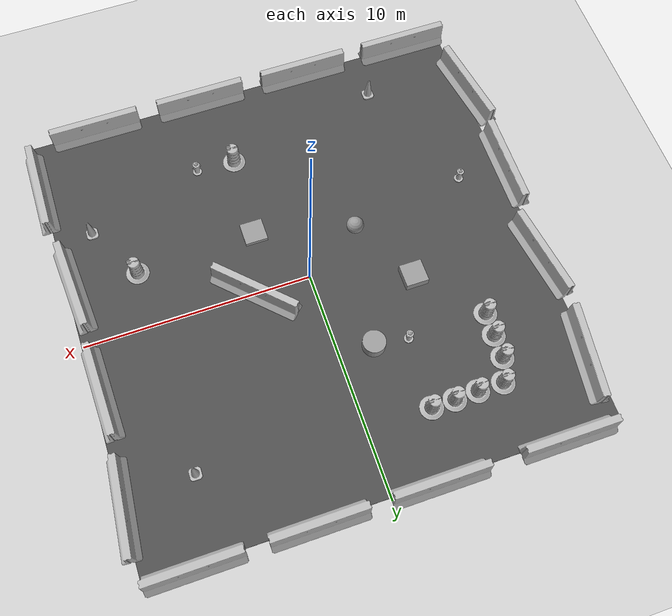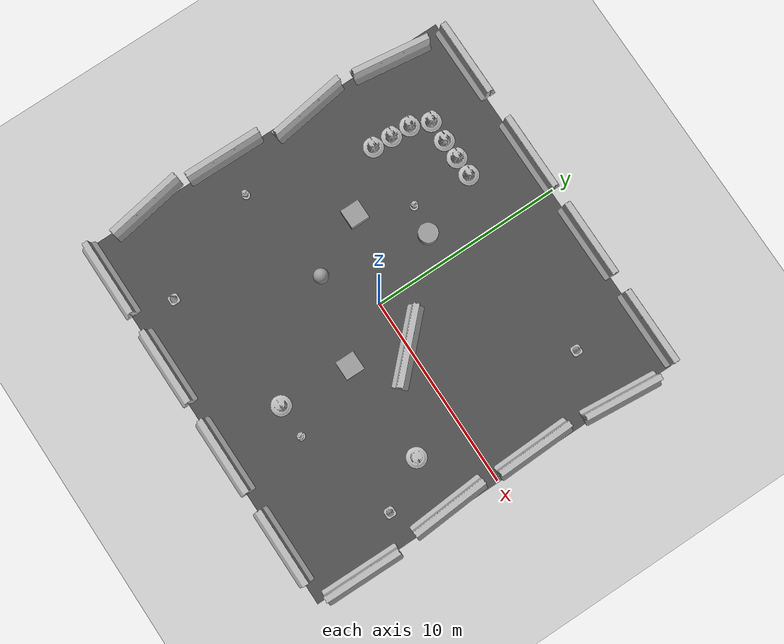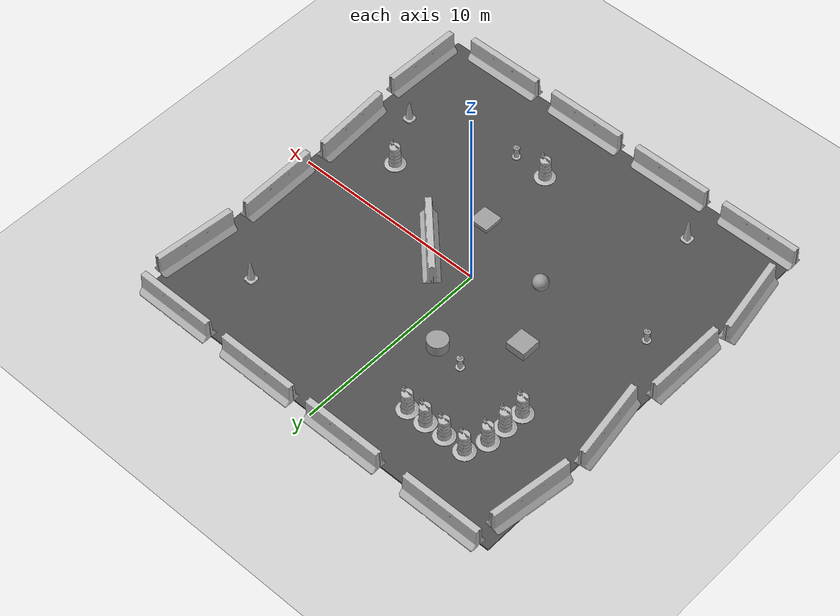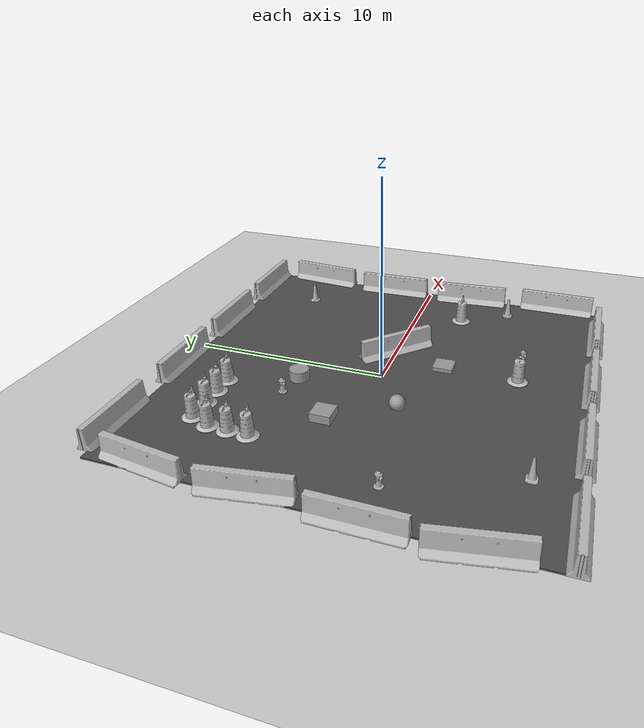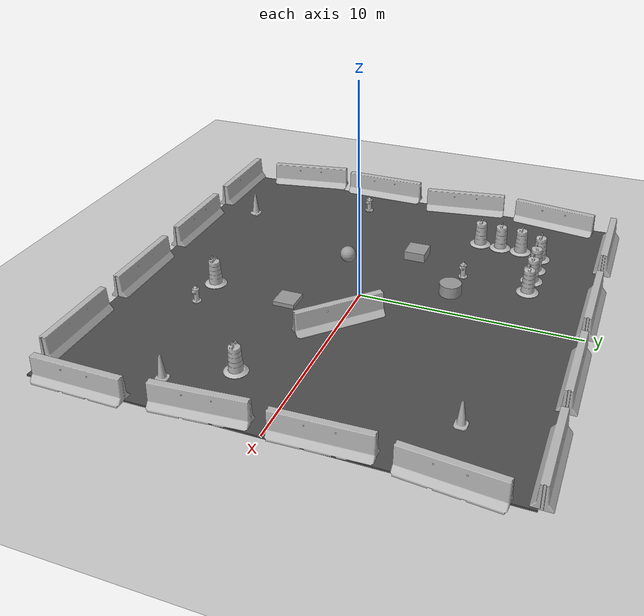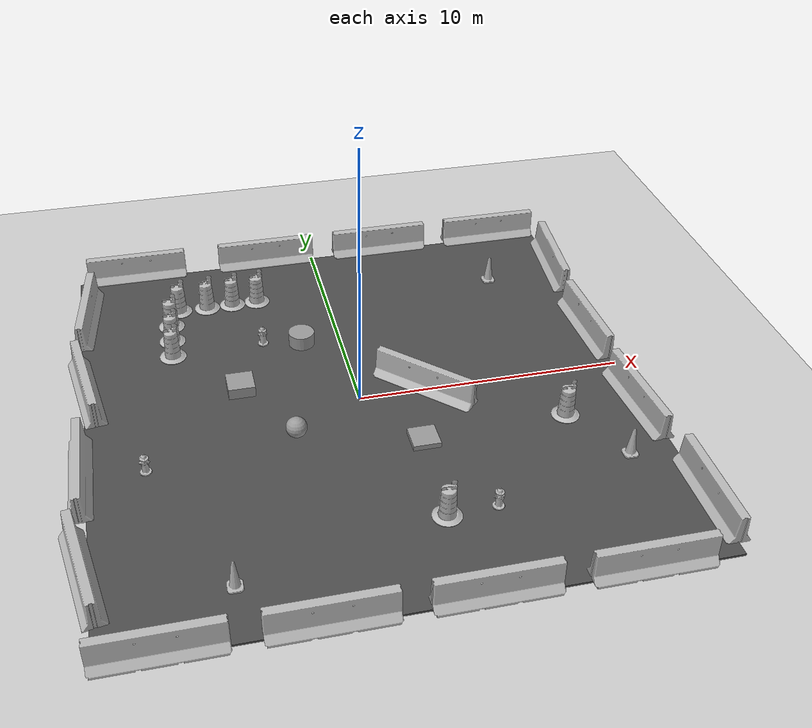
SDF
<sdf version="1.6">
 <world name="default">
  <light name="sun" type="directional">
   <pose>0 0 10 0 -0 0</pose>
   <diffuse>0.8 0.8 0.8 1</diffuse>
   <specular>0.2 0.2 0.2 1</specular>
   <attenuation>
    <range>1000</range>
    <constant>0.9</constant>
    <linear>0.01</linear>
    <quadratic>0.001</quadratic>
   </attenuation>
   <direction>-0.5 0.1 -0.9</direction>
  </light>
  <model name="ground_plane">
   <static>1</static>
   <link name="link">
    <collision name="collision">
     <geometry><plane><normal>0 0 1</normal><size>100 100</size></plane></geometry>
     <surface><friction><ode><mu>100</mu><mu2>50</mu2></ode></friction></surface>
    </collision>
    <visual name="visual">
     <cast_shadows>0</cast_shadows>
     <geometry><plane><normal>0 0 1</normal><size>100 100</size></plane></geometry>
     <material>
      <script><uri>file://media/materials/scripts/gazebo.material</uri><name>Gazebo/Grey</name></script>
     </material>
    </visual>
    <velocity_decay><linear>0</linear><angular>0</angular></velocity_decay>
   </link>
  </model>
  <physics name="default_physics" default="0" type="ode">
   <max_step_size>0.01</max_step_size>
   <real_time_factor>1</real_time_factor>
   <real_time_update_rate>100</real_time_update_rate>
  </physics>
  <scene><ambient>0.4 0.4 0.4 1</ambient><background>0.7 0.7 0.7 1</background><shadows>1</shadows></scene>
  <model name="jersey_barrier">
   <static>1</static>
   <link name="link">
    <visual name="visual">
     <geometry><mesh><uri>model://jersey_barrier/meshes/jersey_barrier.dae</uri></mesh></geometry>
    </visual>
    <collision name="upright">
     <pose>0 0 0.5715 0 -0 0</pose>
     <geometry><box><size>4.06542 0.3063 1.143</size></box></geometry>
    </collision>
    <collision name="base">
     <pose>0 0 0.032258 0 -0 0</pose>
     <geometry><box><size>4.06542 0.8107 0.064516</size></box></geometry>
    </collision>
    <collision name="base2">
     <pose>0 0 0.1 0 -0 0</pose>
     <geometry><box><size>4.06542 0.65 0.1</size></box></geometry>
    </collision>
    <collision name="base3">
     <pose>0 0 0.2 0 -0 0</pose>
     <geometry><box><size>4.06542 0.5 0.1</size></box></geometry>
    </collision>
    <collision name="left-angle">
     <pose>0 -0.224 0.2401 0.9 -0 0</pose>
     <geometry><box><size>4.06542 0.5 0.064516</size></box></geometry>
    </collision>
    <collision name="right-angle">
     <pose>0 0.224 0.2401 -0.9 0 0</pose>
     <geometry><box><size>4.06542 0.5 0.064516</size></box></geometry>
    </collision>
    <velocity_decay><linear>0</linear><angular>0</angular></velocity_decay>
   </link>
   <pose>-8 -10 0 0 -0 0</pose>
  </model>
  <model name="jersey_barrier_0">
   <static>1</static>
   <link name="link">
    <visual name="visual">
     <geometry><mesh><uri>model://jersey_barrier/meshes/jersey_barrier.dae</uri></mesh></geometry>
    </visual>
    <collision name="upright">
     <pose>0 0 0.5715 0 -0 0</pose>
     <geometry><box><size>4.06542 0.3063 1.143</size></box></geometry>
    </collision>
    <collision name="base">
     <pose>0 0 0.032258 0 -0 0</pose>
     <geometry><box><size>4.06542 0.8107 0.064516</size></box></geometry>
    </collision>
    <collision name="base2">
     <pose>0 0 0.1 0 -0 0</pose>
     <geometry><box><size>4.06542 0.65 0.1</size></box></geometry>
    </collision>
    <collision name="base3">
     <pose>0 0 0.2 0 -0 0</pose>
     <geometry><box><size>4.06542 0.5 0.1</size></box></geometry>
    </collision>
    <collision name="left-angle">
     <pose>0 -0.224 0.2401 0.9 -0 0</pose>
     <geometry><box><size>4.06542 0.5 0.064516</size></box></geometry>
    </collision>
    <collision name="right-angle">
     <pose>0 0.224 0.2401 -0.9 0 0</pose>
     <geometry><box><size>4.06542 0.5 0.064516</size></box></geometry>
    </collision>
    <velocity_decay><linear>0</linear><angular>0</angular></velocity_decay>
   </link>
   <pose>-3 -10 0 0 -0 0</pose>
  </model>
  <model name="jersey_barrier_1">
   <static>1</static>
   <link name="link">
    <visual name="visual">
     <geometry><mesh><uri>model://jersey_barrier/meshes/jersey_barrier.dae</uri></mesh></geometry>
    </visual>
    <collision name="upright">
     <pose>0 0 0.5715 0 -0 0</pose>
     <geometry><box><size>4.06542 0.3063 1.143</size></box></geometry>
    </collision>
    <collision name="base">
     <pose>0 0 0.032258 0 -0 0</pose>
     <geometry><box><size>4.06542 0.8107 0.064516</size></box></geometry>
    </collision>
    <collision name="base2">
     <pose>0 0 0.1 0 -0 0</pose>
     <geometry><box><size>4.06542 0.65 0.1</size></box></geometry>
    </collision>
    <collision name="base3">
     <pose>0 0 0.2 0 -0 0</pose>
     <geometry><box><size>4.06542 0.5 0.1</size></box></geometry>
    </collision>
    <collision name="left-angle">
     <pose>0 -0.224 0.2401 0.9 -0 0</pose>
     <geometry><box><size>4.06542 0.5 0.064516</size></box></geometry>
    </collision>
    <collision name="right-angle">
     <pose>0 0.224 0.2401 -0.9 0 0</pose>
     <geometry><box><size>4.06542 0.5 0.064516</size></box></geometry>
    </collision>
    <velocity_decay><linear>0</linear><angular>0</angular></velocity_decay>
   </link>
   <pose>2 -10 0 0 -0 0</pose>
  </model>
  <model name="jersey_barrier_2">
   <static>1</static>
   <link name="link">
    <visual name="visual">
     <geometry><mesh><uri>model://jersey_barrier/meshes/jersey_barrier.dae</uri></mesh></geometry>
    </visual>
    <collision name="upright">
     <pose>0 0 0.5715 0 -0 0</pose>
     <geometry><box><size>4.06542 0.3063 1.143</size></box></geometry>
    </collision>
    <collision name="base">
     <pose>0 0 0.032258 0 -0 0</pose>
     <geometry><box><size>4.06542 0.8107 0.064516</size></box></geometry>
    </collision>
    <collision name="base2">
     <pose>0 0 0.1 0 -0 0</pose>
     <geometry><box><size>4.06542 0.65 0.1</size></box></geometry>
    </collision>
    <collision name="base3">
     <pose>0 0 0.2 0 -0 0</pose>
     <geometry><box><size>4.06542 0.5 0.1</size></box></geometry>
    </collision>
    <collision name="left-angle">
     <pose>0 -0.224 0.2401 0.9 -0 0</pose>
     <geometry><box><size>4.06542 0.5 0.064516</size></box></geometry>
    </collision>
    <collision name="right-angle">
     <pose>0 0.224 0.2401 -0.9 0 0</pose>
     <geometry><box><size>4.06542 0.5 0.064516</size></box></geometry>
    </collision>
    <velocity_decay><linear>0</linear><angular>0</angular></velocity_decay>
   </link>
   <pose>7 -10 0 0 -0 0</pose>
  </model>
  <model name="jersey_barrier_3">
   <static>1</static>
   <link name="link">
    <visual name="visual">
     <geometry><mesh><uri>model://jersey_barrier/meshes/jersey_barrier.dae</uri></mesh></geometry>
    </visual>
    <collision name="upright">
     <pose>0 0 0.5715 0 -0 0</pose>
     <geometry><box><size>4.06542 0.3063 1.143</size></box></geometry>
    </collision>
    <collision name="base">
     <pose>0 0 0.032258 0 -0 0</pose>
     <geometry><box><size>4.06542 0.8107 0.064516</size></box></geometry>
    </collision>
    <collision name="base2">
     <pose>0 0 0.1 0 -0 0</pose>
     <geometry><box><size>4.06542 0.65 0.1</size></box></geometry>
    </collision>
    <collision name="base3">
     <pose>0 0 0.2 0 -0 0</pose>
     <geometry><box><size>4.06542 0.5 0.1</size></box></geometry>
    </collision>
    <collision name="left-angle">
     <pose>0 -0.224 0.2401 0.9 -0 0</pose>
     <geometry><box><size>4.06542 0.5 0.064516</size></box></geometry>
    </collision>
    <collision name="right-angle">
     <pose>0 0.224 0.2401 -0.9 0 0</pose>
     <geometry><box><size>4.06542 0.5 0.064516</size></box></geometry>
    </collision>
    <velocity_decay><linear>0</linear><angular>0</angular></velocity_decay>
   </link>
   <pose>-7.50675 10 0 0 -0 0</pose>
  </model>
  <model name="jersey_barrier_4">
   <static>1</static>
   <link name="link">
    <visual name="visual">
     <geometry><mesh><uri>model://jersey_barrier/meshes/jersey_barrier.dae</uri></mesh></geometry>
    </visual>
    <collision name="upright">
     <pose>0 0 0.5715 0 -0 0</pose>
     <geometry><box><size>4.06542 0.3063 1.143</size></box></geometry>
    </collision>
    <collision name="base">
     <pose>0 0 0.032258 0 -0 0</pose>
     <geometry><box><size>4.06542 0.8107 0.064516</size></box></geometry>
    </collision>
    <collision name="base2">
     <pose>0 0 0.1 0 -0 0</pose>
     <geometry><box><size>4.06542 0.65 0.1</size></box></geometry>
    </collision>
    <collision name="base3">
     <pose>0 0 0.2 0 -0 0</pose>
     <geometry><box><size>4.06542 0.5 0.1</size></box></geometry>
    </collision>
    <collision name="left-angle">
     <pose>0 -0.224 0.2401 0.9 -0 0</pose>
     <geometry><box><size>4.06542 0.5 0.064516</size></box></geometry>
    </collision>
    <collision name="right-angle">
     <pose>0 0.224 0.2401 -0.9 0 0</pose>
     <geometry><box><size>4.06542 0.5 0.064516</size></box></geometry>
    </collision>
    <velocity_decay><linear>0</linear><angular>0</angular></velocity_decay>
   </link>
   <pose>-2 10 0 0 -0 0</pose>
  </model>
  <model name="jersey_barrier_5">
   <static>1</static>
   <link name="link">
    <visual name="visual">
     <geometry><mesh><uri>model://jersey_barrier/meshes/jersey_barrier.dae</uri></mesh></geometry>
    </visual>
    <collision name="upright">
     <pose>0 0 0.5715 0 -0 0</pose>
     <geometry><box><size>4.06542 0.3063 1.143</size></box></geometry>
    </collision>
    <collision name="base">
     <pose>0 0 0.032258 0 -0 0</pose>
     <geometry><box><size>4.06542 0.8107 0.064516</size></box></geometry>
    </collision>
    <collision name="base2">
     <pose>0 0 0.1 0 -0 0</pose>
     <geometry><box><size>4.06542 0.65 0.1</size></box></geometry>
    </collision>
    <collision name="base3">
     <pose>0 0 0.2 0 -0 0</pose>
     <geometry><box><size>4.06542 0.5 0.1</size></box></geometry>
    </collision>
    <collision name="left-angle">
     <pose>0 -0.224 0.2401 0.9 -0 0</pose>
     <geometry><box><size>4.06542 0.5 0.064516</size></box></geometry>
    </collision>
    <collision name="right-angle">
     <pose>0 0.224 0.2401 -0.9 0 0</pose>
     <geometry><box><size>4.06542 0.5 0.064516</size></box></geometry>
    </collision>
    <velocity_decay><linear>0</linear><angular>0</angular></velocity_decay>
   </link>
   <pose>3 10 0 0 -0 0</pose>
  </model>
  <model name="jersey_barrier_6">
   <static>1</static>
   <link name="link">
    <visual name="visual">
     <geometry><mesh><uri>model://jersey_barrier/meshes/jersey_barrier.dae</uri></mesh></geometry>
    </visual>
    <collision name="upright">
     <pose>0 0 0.5715 0 -0 0</pose>
     <geometry><box><size>4.06542 0.3063 1.143</size></box></geometry>
    </collision>
    <collision name="base">
     <pose>0 0 0.032258 0 -0 0</pose>
     <geometry><box><size>4.06542 0.8107 0.064516</size></box></geometry>
    </collision>
    <collision name="base2">
     <pose>0 0 0.1 0 -0 0</pose>
     <geometry><box><size>4.06542 0.65 0.1</size></box></geometry>
    </collision>
    <collision name="base3">
     <pose>0 0 0.2 0 -0 0</pose>
     <geometry><box><size>4.06542 0.5 0.1</size></box></geometry>
    </collision>
    <collision name="left-angle">
     <pose>0 -0.224 0.2401 0.9 -0 0</pose>
     <geometry><box><size>4.06542 0.5 0.064516</size></box></geometry>
    </collision>
    <collision name="right-angle">
     <pose>0 0.224 0.2401 -0.9 0 0</pose>
     <geometry><box><size>4.06542 0.5 0.064516</size></box></geometry>
    </collision>
    <velocity_decay><linear>0</linear><angular>0</angular></velocity_decay>
   </link>
   <pose>8 10 0 0 -0 0</pose>
  </model>
  <model name="jersey_barrier_7">
   <static>1</static>
   <link name="link">
    <visual name="visual">
     <geometry><mesh><uri>model://jersey_barrier/meshes/jersey_barrier.dae</uri></mesh></geometry>
    </visual>
    <collision name="upright">
     <pose>0 0 0.5715 0 -0 0</pose>
     <geometry><box><size>4.06542 0.3063 1.143</size></box></geometry>
    </collision>
    <collision name="base">
     <pose>0 0 0.032258 0 -0 0</pose>
     <geometry><box><size>4.06542 0.8107 0.064516</size></box></geometry>
    </collision>
    <collision name="base2">
     <pose>0 0 0.1 0 -0 0</pose>
     <geometry><box><size>4.06542 0.65 0.1</size></box></geometry>
    </collision>
    <collision name="base3">
     <pose>0 0 0.2 0 -0 0</pose>
     <geometry><box><size>4.06542 0.5 0.1</size></box></geometry>
    </collision>
    <collision name="left-angle">
     <pose>0 -0.224 0.2401 0.9 -0 0</pose>
     <geometry><box><size>4.06542 0.5 0.064516</size></box></geometry>
    </collision>
    <collision name="right-angle">
     <pose>0 0.224 0.2401 -0.9 0 0</pose>
     <geometry><box><size>4.06542 0.5 0.064516</size></box></geometry>
    </collision>
    <velocity_decay><linear>0</linear><angular>0</angular></velocity_decay>
   </link>
   <pose>9.74902 -2.57759 0 0 -0 1.64</pose>
  </model>
  <model name="jersey_barrier_8">
   <static>1</static>
   <link name="link">
    <visual name="visual">
     <geometry><mesh><uri>model://jersey_barrier/meshes/jersey_barrier.dae</uri></mesh></geometry>
    </visual>
    <collision name="upright">
     <pose>0 0 0.5715 0 -0 0</pose>
     <geometry><box><size>4.06542 0.3063 1.143</size></box></geometry>
    </collision>
    <collision name="base">
     <pose>0 0 0.032258 0 -0 0</pose>
     <geometry><box><size>4.06542 0.8107 0.064516</size></box></geometry>
    </collision>
    <collision name="base2">
     <pose>0 0 0.1 0 -0 0</pose>
     <geometry><box><size>4.06542 0.65 0.1</size></box></geometry>
    </collision>
    <collision name="base3">
     <pose>0 0 0.2 0 -0 0</pose>
     <geometry><box><size>4.06542 0.5 0.1</size></box></geometry>
    </collision>
    <collision name="left-angle">
     <pose>0 -0.224 0.2401 0.9 -0 0</pose>
     <geometry><box><size>4.06542 0.5 0.064516</size></box></geometry>
    </collision>
    <collision name="right-angle">
     <pose>0 0.224 0.2401 -0.9 0 0</pose>
     <geometry><box><size>4.06542 0.5 0.064516</size></box></geometry>
    </collision>
    <velocity_decay><linear>0</linear><angular>0</angular></velocity_decay>
   </link>
   <pose>9.70141 2.24369 0 0 -0 1.6</pose>
  </model>
  <model name="jersey_barrier_9">
   <static>1</static>
   <link name="link">
    <visual name="visual">
     <geometry><mesh><uri>model://jersey_barrier/meshes/jersey_barrier.dae</uri></mesh></geometry>
    </visual>
    <collision name="upright">
     <pose>0 0 0.5715 0 -0 0</pose>
     <geometry><box><size>4.06542 0.3063 1.143</size></box></geometry>
    </collision>
    <collision name="base">
     <pose>0 0 0.032258 0 -0 0</pose>
     <geometry><box><size>4.06542 0.8107 0.064516</size></box></geometry>
    </collision>
    <collision name="base2">
     <pose>0 0 0.1 0 -0 0</pose>
     <geometry><box><size>4.06542 0.65 0.1</size></box></geometry>
    </collision>
    <collision name="base3">
     <pose>0 0 0.2 0 -0 0</pose>
     <geometry><box><size>4.06542 0.5 0.1</size></box></geometry>
    </collision>
    <collision name="left-angle">
     <pose>0 -0.224 0.2401 0.9 -0 0</pose>
     <geometry><box><size>4.06542 0.5 0.064516</size></box></geometry>
    </collision>
    <collision name="right-angle">
     <pose>0 0.224 0.2401 -0.9 0 0</pose>
     <geometry><box><size>4.06542 0.5 0.064516</size></box></geometry>
    </collision>
    <velocity_decay><linear>0</linear><angular>0</angular></velocity_decay>
   </link>
   <pose>-10.0607 -6.69856 0 0 0 -1.4</pose>
  </model>
  <model name="jersey_barrier_10">
   <static>1</static>
   <link name="link">
    <visual name="visual">
     <geometry><mesh><uri>model://jersey_barrier/meshes/jersey_barrier.dae</uri></mesh></geometry>
    </visual>
    <collision name="upright">
     <pose>0 0 0.5715 0 -0 0</pose>
     <geometry><box><size>4.06542 0.3063 1.143</size></box></geometry>
    </collision>
    <collision name="base">
     <pose>0 0 0.032258 0 -0 0</pose>
     <geometry><box><size>4.06542 0.8107 0.064516</size></box></geometry>
    </collision>
    <collision name="base2">
     <pose>0 0 0.1 0 -0 0</pose>
     <geometry><box><size>4.06542 0.65 0.1</size></box></geometry>
    </collision>
    <collision name="base3">
     <pose>0 0 0.2 0 -0 0</pose>
     <geometry><box><size>4.06542 0.5 0.1</size></box></geometry>
    </collision>
    <collision name="left-angle">
     <pose>0 -0.224 0.2401 0.9 -0 0</pose>
     <geometry><box><size>4.06542 0.5 0.064516</size></box></geometry>
    </collision>
    <collision name="right-angle">
     <pose>0 0.224 0.2401 -0.9 0 0</pose>
     <geometry><box><size>4.06542 0.5 0.064516</size></box></geometry>
    </collision>
    <velocity_decay><linear>0</linear><angular>0</angular></velocity_decay>
   </link>
   <pose>-10.0774 -2.27159 0 0 -0 1.56</pose>
  </model>
  <model name="jersey_barrier_11">
   <static>1</static>
   <link name="link">
    <visual name="visual">
     <geometry><mesh><uri>model://jersey_barrier/meshes/jersey_barrier.dae</uri></mesh></geometry>
    </visual>
    <collision name="upright">
     <pose>0 0 0.5715 0 -0 0</pose>
     <geometry><box><size>4.06542 0.3063 1.143</size></box></geometry>
    </collision>
    <collision name="base">
     <pose>0 0 0.032258 0 -0 0</pose>
     <geometry><box><size>4.06542 0.8107 0.064516</size></box></geometry>
    </collision>
    <collision name="base2">
     <pose>0 0 0.1 0 -0 0</pose>
     <geometry><box><size>4.06542 0.65 0.1</size></box></geometry>
    </collision>
    <collision name="base3">
     <pose>0 0 0.2 0 -0 0</pose>
     <geometry><box><size>4.06542 0.5 0.1</size></box></geometry>
    </collision>
    <collision name="left-angle">
     <pose>0 -0.224 0.2401 0.9 -0 0</pose>
     <geometry><box><size>4.06542 0.5 0.064516</size></box></geometry>
    </collision>
    <collision name="right-angle">
     <pose>0 0.224 0.2401 -0.9 0 0</pose>
     <geometry><box><size>4.06542 0.5 0.064516</size></box></geometry>
    </collision>
    <velocity_decay><linear>0</linear><angular>0</angular></velocity_decay>
   </link>
   <pose>-9.77013 2.34791 0 0 -0 1.72</pose>
  </model>
  <model name="jersey_barrier_12">
   <static>1</static>
   <link name="link">
    <visual name="visual">
     <geometry><mesh><uri>model://jersey_barrier/meshes/jersey_barrier.dae</uri></mesh></geometry>
    </visual>
    <collision name="upright">
     <pose>0 0 0.5715 0 -0 0</pose>
     <geometry><box><size>4.06542 0.3063 1.143</size></box></geometry>
    </collision>
    <collision name="base">
     <pose>0 0 0.032258 0 -0 0</pose>
     <geometry><box><size>4.06542 0.8107 0.064516</size></box></geometry>
    </collision>
    <collision name="base2">
     <pose>0 0 0.1 0 -0 0</pose>
     <geometry><box><size>4.06542 0.65 0.1</size></box></geometry>
    </collision>
    <collision name="base3">
     <pose>0 0 0.2 0 -0 0</pose>
     <geometry><box><size>4.06542 0.5 0.1</size></box></geometry>
    </collision>
    <collision name="left-angle">
     <pose>0 -0.224 0.2401 0.9 -0 0</pose>
     <geometry><box><size>4.06542 0.5 0.064516</size></box></geometry>
    </collision>
    <collision name="right-angle">
     <pose>0 0.224 0.2401 -0.9 0 0</pose>
     <geometry><box><size>4.06542 0.5 0.064516</size></box></geometry>
    </collision>
    <velocity_decay><linear>0</linear><angular>0</angular></velocity_decay>
   </link>
   <pose>10.0879 -7.62159 0 0 -0 1.56</pose>
  </model>
  <model name="jersey_barrier_13">
   <static>1</static>
   <link name="link">
    <visual name="visual">
     <geometry><mesh><uri>model://jersey_barrier/meshes/jersey_barrier.dae</uri></mesh></geometry>
    </visual>
    <collision name="upright">
     <pose>0 0 0.5715 0 -0 0</pose>
     <geometry><box><size>4.06542 0.3063 1.143</size></box></geometry>
    </collision>
    <collision name="base">
     <pose>0 0 0.032258 0 -0 0</pose>
     <geometry><box><size>4.06542 0.8107 0.064516</size></box></geometry>
    </collision>
    <collision name="base2">
     <pose>0 0 0.1 0 -0 0</pose>
     <geometry><box><size>4.06542 0.65 0.1</size></box></geometry>
    </collision>
    <collision name="base3">
     <pose>0 0 0.2 0 -0 0</pose>
     <geometry><box><size>4.06542 0.5 0.1</size></box></geometry>
    </collision>
    <collision name="left-angle">
     <pose>0 -0.224 0.2401 0.9 -0 0</pose>
     <geometry><box><size>4.06542 0.5 0.064516</size></box></geometry>
    </collision>
    <collision name="right-angle">
     <pose>0 0.224 0.2401 -0.9 0 0</pose>
     <geometry><box><size>4.06542 0.5 0.064516</size></box></geometry>
    </collision>
    <velocity_decay><linear>0</linear><angular>0</angular></velocity_decay>
   </link>
   <pose>10 7 0 0 -0 1.48</pose>
  </model>
  <model name="jersey_barrier_14">
   <static>1</static>
   <link name="link">
    <visual name="visual">
     <geometry><mesh><uri>model://jersey_barrier/meshes/jersey_barrier.dae</uri></mesh></geometry>
    </visual>
    <collision name="upright">
     <pose>0 0 0.5715 0 -0 0</pose>
     <geometry><box><size>4.06542 0.3063 1.143</size></box></geometry>
    </collision>
    <collision name="base">
     <pose>0 0 0.032258 0 -0 0</pose>
     <geometry><box><size>4.06542 0.8107 0.064516</size></box></geometry>
    </collision>
    <collision name="base2">
     <pose>0 0 0.1 0 -0 0</pose>
     <geometry><box><size>4.06542 0.65 0.1</size></box></geometry>
    </collision>
    <collision name="base3">
     <pose>0 0 0.2 0 -0 0</pose>
     <geometry><box><size>4.06542 0.5 0.1</size></box></geometry>
    </collision>
    <collision name="left-angle">
     <pose>0 -0.224 0.2401 0.9 -0 0</pose>
     <geometry><box><size>4.06542 0.5 0.064516</size></box></geometry>
    </collision>
    <collision name="right-angle">
     <pose>0 0.224 0.2401 -0.9 0 0</pose>
     <geometry><box><size>4.06542 0.5 0.064516</size></box></geometry>
    </collision>
    <velocity_decay><linear>0</linear><angular>0</angular></velocity_decay>
   </link>
   <pose>-9.64482 7.05946 0 0 -0 1.44</pose>
  </model>
  <model name="fire_hydrant">
   <static>1</static>
   <link name="link">
    <collision name="collision">
     <geometry><mesh><uri>model://fire_hydrant/meshes/fire_hydrant.dae</uri></mesh></geometry>
    </collision>
    <visual name="visual">
     <geometry><mesh><uri>model://fire_hydrant/meshes/fire_hydrant.dae</uri></mesh></geometry>
    </visual>
    <velocity_decay><linear>0</linear><angular>0</angular></velocity_decay>
   </link>
   <pose>3.18024 -6.51118 0 0 -0 0</pose>
  </model>
  <model name="fire_hydrant_0">
   <static>1</static>
   <link name="link">
    <collision name="collision">
     <geometry><mesh><uri>model://fire_hydrant/meshes/fire_hydrant.dae</uri></mesh></geometry>
    </collision>
    <visual name="visual">
     <geometry><mesh><uri>model://fire_hydrant/meshes/fire_hydrant.dae</uri></mesh></geometry>
    </visual>
    <velocity_decay><linear>0</linear><angular>0</angular></velocity_decay>
   </link>
   <pose>-3 4 0 0 -0 0</pose>
  </model>
  <model name="fire_hydrant_1">
   <static>1</static>
   <link name="link">
    <collision name="collision">
     <geometry><mesh><uri>model://fire_hydrant/meshes/fire_hydrant.dae</uri></mesh></geometry>
    </collision>
    <visual name="visual">
     <geometry><mesh><uri>model://fire_hydrant/meshes/fire_hydrant.dae</uri></mesh></geometry>
    </visual>
    <velocity_decay><linear>0</linear><angular>0</angular></velocity_decay>
   </link>
   <pose>-7.90686 -2.41363 0 0 -0 0</pose>
  </model>
  <model name="jersey_barrier_15">
   <static>1</static>
   <link name="link">
    <visual name="visual">
     <geometry><mesh><uri>model://jersey_barrier/meshes/jersey_barrier.dae</uri></mesh></geometry>
    </visual>
    <collision name="upright">
     <pose>0 0 0.5715 0 -0 0</pose>
     <geometry><box><size>4.06542 0.3063 1.143</size></box></geometry>
    </collision>
    <collision name="base">
     <pose>0 0 0.032258 0 -0 0</pose>
     <geometry><box><size>4.06542 0.8107 0.064516</size></box></geometry>
    </collision>
    <collision name="base2">
     <pose>0 0 0.1 0 -0 0</pose>
     <geometry><box><size>4.06542 0.65 0.1</size></box></geometry>
    </collision>
    <collision name="base3">
     <pose>0 0 0.2 0 -0 0</pose>
     <geometry><box><size>4.06542 0.5 0.1</size></box></geometry>
    </collision>
    <collision name="left-angle">
     <pose>0 -0.224 0.2401 0.9 -0 0</pose>
     <geometry><box><size>4.06542 0.5 0.064516</size></box></geometry>
    </collision>
    <collision name="right-angle">
     <pose>0 0.224 0.2401 -0.9 0 0</pose>
     <geometry><box><size>4.06542 0.5 0.064516</size></box></geometry>
    </collision>
    <velocity_decay><linear>0</linear><angular>0</angular></velocity_decay>
   </link>
   <pose>2.45495 0 0 0 -0 2.36</pose>
  </model>
  <model name="Construction Cone">
   <link name="link">
    <collision name="collision">
     <geometry>
      <mesh><scale>10 10 10</scale><uri>model://construction_cone/meshes/construction_cone.dae</uri></mesh>
     </geometry>
    </collision>
    <visual name="visual">
     <geometry>
      <mesh><scale>10 10 10</scale><uri>model://construction_cone/meshes/construction_cone.dae</uri></mesh>
     </geometry>
    </visual>
    <velocity_decay><linear>0</linear><angular>0</angular></velocity_decay>
    <inertial>
     <inertia><ixx>1</ixx><ixy>0</ixy><ixz>0</ixz><iyy>1</iyy><iyz>0</iyz><izz>1</izz></inertia>
     <mass>1</mass>
    </inertial>
   </link>
   <pose>-5.59121 -8 0.04902 1e-06 -0 1e-06</pose>
   <static>0</static>
  </model>
  <model name="Construction Barrel">
   <link name="link">
    <inertial>
     <pose>0 0 0.4 0 -0 0</pose>
     <mass>500</mass>
     <inertia><ixx>51.2096</ixx><iyy>51.2096</iyy><izz>25</izz><ixy>0</ixy><ixz>0</ixz><iyz>0</iyz></inertia>
    </inertial>
    <collision name="collision">
     <geometry><mesh><uri>model://construction_barrel/meshes/construction_barrel.dae</uri></mesh></geometry>
    </collision>
    <visual name="visual">
     <geometry><mesh><uri>model://construction_barrel/meshes/construction_barrel.dae</uri></mesh></geometry>
    </visual>
    <velocity_decay><linear>0</linear><angular>0</angular></velocity_decay>
   </link>
   <pose>7.00008 -2.54629 0.049908 -0.000181 -0.000361 0.000311</pose>
   <static>0</static>
  </model>
  <model name="Construction Cone_0">
   <link name="link">
    <collision name="collision">
     <geometry>
      <mesh><scale>10 10 10</scale><uri>model://construction_cone/meshes/construction_cone.dae</uri></mesh>
     </geometry>
    </collision>
    <visual name="visual">
     <geometry>
      <mesh><scale>10 10 10</scale><uri>model://construction_cone/meshes/construction_cone.dae</uri></mesh>
     </geometry>
    </visual>
    <velocity_decay><linear>0</linear><angular>0</angular></velocity_decay>
    <inertial>
     <inertia><ixx>1</ixx><ixy>0</ixy><ixz>0</ixz><iyy>1</iyy><iyz>0</iyz><izz>1</izz></inertia>
     <mass>1</mass>
    </inertial>
   </link>
   <pose>6.99685 6.55732 0.04902 1e-06 0 -0.007011</pose>
   <static>0</static>
  </model>
  <model name="Construction Barrel_0">
   <link name="link">
    <inertial>
     <pose>0 0 0.4 0 -0 0</pose>
     <mass>500</mass>
     <inertia><ixx>51.2096</ixx><iyy>51.2096</iyy><izz>25</izz><ixy>0</ixy><ixz>0</ixz><iyz>0</iyz></inertia>
    </inertial>
    <collision name="collision">
     <geometry><mesh><uri>model://construction_barrel/meshes/construction_barrel.dae</uri></mesh></geometry>
    </collision>
    <visual name="visual">
     <geometry><mesh><uri>model://construction_barrel/meshes/construction_barrel.dae</uri></mesh></geometry>
    </visual>
    <velocity_decay><linear>0</linear><angular>0</angular></velocity_decay>
   </link>
   <pose>1.4518 -6.51122 0.049909 0.000399 -2.5e-05 -5.2e-05</pose>
   <static>0</static>
  </model>
  <model name="asphalt_plane">
   <static>1</static>
   <link name="link">
    <collision name="collision"><geometry><box><size>20 20 0.1</size></box></geometry></collision>
    <visual name="visual">
     <cast_shadows>0</cast_shadows>
     <geometry><box><size>20 20 0.1</size></box></geometry>
     <material>
      <script>
       <uri>model://asphalt_plane/materials/scripts</uri>
       <uri>model://asphalt_plane/materials/textures</uri>
       <name>vrc/asphalt</name>
      </script>
     </material>
    </visual>
    <velocity_decay><linear>0</linear><angular>0</angular></velocity_decay>
   </link>
   <pose>0.076733 -0.110379 0 0 -0 0</pose>
  </model>
  <model name="Construction Barrel_1">
   <link name="link">
    <inertial>
     <pose>0 0 0.4 0 -0 0</pose>
     <mass>500</mass>
     <inertia><ixx>51.2096</ixx><iyy>51.2096</iyy><izz>25</izz><ixy>0</ixy><ixz>0</ixz><iyz>0</iyz></inertia>
    </inertial>
    <collision name="collision">
     <geometry><mesh><uri>model://construction_barrel/meshes/construction_barrel.dae</uri></mesh></geometry>
    </collision>
    <visual name="visual">
     <geometry><mesh><uri>model://construction_barrel/meshes/construction_barrel.dae</uri></mesh></geometry>
    </visual>
    <velocity_decay><linear>0</linear><angular>0</angular></velocity_decay>
   </link>
   <pose>-6.50469 3.98276 0.049898 -9.7e-05 -0.000417 -0.009571</pose>
   <static>0</static>
  </model>
  <model name="Construction Barrel_2">
   <link name="link">
    <inertial>
     <pose>0 0 0.4 0 -0 0</pose>
     <mass>500</mass>
     <inertia><ixx>51.2096</ixx><iyy>51.2096</iyy><izz>25</izz><ixy>0</ixy><ixz>0</ixz><iyz>0</iyz></inertia>
    </inertial>
    <collision name="collision">
     <geometry><mesh><uri>model://construction_barrel/meshes/construction_barrel.dae</uri></mesh></geometry>
    </collision>
    <visual name="visual">
     <geometry><mesh><uri>model://construction_barrel/meshes/construction_barrel.dae</uri></mesh></geometry>
    </visual>
    <velocity_decay><linear>0</linear><angular>0</angular></velocity_decay>
   </link>
   <pose>-6.45061 4.99646 0.049919 0.000368 -2.9e-05 0.064914</pose>
   <static>0</static>
  </model>
  <model name="Construction Barrel_3">
   <link name="link">
    <inertial>
     <pose>0 0 0.4 0 -0 0</pose>
     <mass>500</mass>
     <inertia><ixx>51.2096</ixx><iyy>51.2096</iyy><izz>25</izz><ixy>0</ixy><ixz>0</ixz><iyz>0</iyz></inertia>
    </inertial>
    <collision name="collision">
     <geometry><mesh><uri>model://construction_barrel/meshes/construction_barrel.dae</uri></mesh></geometry>
    </collision>
    <visual name="visual">
     <geometry><mesh><uri>model://construction_barrel/meshes/construction_barrel.dae</uri></mesh></geometry>
    </visual>
    <velocity_decay><linear>0</linear><angular>0</angular></velocity_decay>
   </link>
   <pose>-6.4017 6.01118 0.049929 0.000329 5.4e-05 -0.120743</pose>
   <static>0</static>
  </model>
  <model name="Construction Barrel_4">
   <link name="link">
    <inertial>
     <pose>0 0 0.4 0 -0 0</pose>
     <mass>500</mass>
     <inertia><ixx>51.2096</ixx><iyy>51.2096</iyy><izz>25</izz><ixy>0</ixy><ixz>0</ixz><iyz>0</iyz></inertia>
    </inertial>
    <collision name="collision">
     <geometry><mesh><uri>model://construction_barrel/meshes/construction_barrel.dae</uri></mesh></geometry>
    </collision>
    <visual name="visual">
     <geometry><mesh><uri>model://construction_barrel/meshes/construction_barrel.dae</uri></mesh></geometry>
    </visual>
    <velocity_decay><linear>0</linear><angular>0</angular></velocity_decay>
   </link>
   <pose>-6.00622 7.00895 0.049896 -9.9e-05 -0.000422 -0.049528</pose>
   <static>0</static>
  </model>
  <model name="Construction Barrel_5">
   <link name="link">
    <inertial>
     <pose>0 0 0.4 0 -0 0</pose>
     <mass>500</mass>
     <inertia><ixx>51.2096</ixx><iyy>51.2096</iyy><izz>25</izz><ixy>0</ixy><ixz>0</ixz><iyz>0</iyz></inertia>
    </inertial>
    <collision name="collision">
     <geometry><mesh><uri>model://construction_barrel/meshes/construction_barrel.dae</uri></mesh></geometry>
    </collision>
    <visual name="visual">
     <geometry><mesh><uri>model://construction_barrel/meshes/construction_barrel.dae</uri></mesh></geometry>
    </visual>
    <velocity_decay><linear>0</linear><angular>0</angular></velocity_decay>
   </link>
   <pose>-4.8756 7.0082 0.049874 0.000493 -0 0.146116</pose>
   <static>0</static>
  </model>
  <model name="Construction Barrel_6">
   <link name="link">
    <inertial>
     <pose>0 0 0.4 0 -0 0</pose>
     <mass>500</mass>
     <inertia><ixx>51.2096</ixx><iyy>51.2096</iyy><izz>25</izz><ixy>0</ixy><ixz>0</ixz><iyz>0</iyz></inertia>
    </inertial>
    <collision name="collision">
     <geometry><mesh><uri>model://construction_barrel/meshes/construction_barrel.dae</uri></mesh></geometry>
    </collision>
    <visual name="visual">
     <geometry><mesh><uri>model://construction_barrel/meshes/construction_barrel.dae</uri></mesh></geometry>
    </visual>
    <velocity_decay><linear>0</linear><angular>0</angular></velocity_decay>
   </link>
   <pose>-3.84278 7.04164 0.049915 -6.1e-05 -0.000318 0.028241</pose>
   <static>0</static>
  </model>
  <model name="Construction Barrel_7">
   <link name="link">
    <inertial>
     <pose>0 0 0.4 0 -0 0</pose>
     <mass>500</mass>
     <inertia><ixx>51.2096</ixx><iyy>51.2096</iyy><izz>25</izz><ixy>0</ixy><ixz>0</ixz><iyz>0</iyz></inertia>
    </inertial>
    <collision name="collision">
     <geometry><mesh><uri>model://construction_barrel/meshes/construction_barrel.dae</uri></mesh></geometry>
    </collision>
    <visual name="visual">
     <geometry><mesh><uri>model://construction_barrel/meshes/construction_barrel.dae</uri></mesh></geometry>
    </visual>
    <velocity_decay><linear>0</linear><angular>0</angular></velocity_decay>
   </link>
   <pose>-2.82642 7.05218 0.049926 0.000338 -3e-06 0.057741</pose>
   <static>0</static>
  </model>
  <model name="Construction Cone_1">
   <link name="link">
    <collision name="collision">
     <geometry>
      <mesh><scale>10 10 10</scale><uri>model://construction_cone/meshes/construction_cone.dae</uri></mesh>
     </geometry>
    </collision>
    <visual name="visual">
     <geometry>
      <mesh><scale>10 10 10</scale><uri>model://construction_cone/meshes/construction_cone.dae</uri></mesh>
     </geometry>
    </visual>
    <velocity_decay><linear>0</linear><angular>0</angular></velocity_decay>
    <inertial>
     <inertia><ixx>1</ixx><ixy>0</ixy><ixz>0</ixz><iyy>1</iyy><iyz>0</iyz><izz>1</izz></inertia>
     <mass>1</mass>
    </inertial>
   </link>
   <pose>8.42887 -5 0.04902 1e-06 -0 1e-06</pose>
   <static>0</static>
  </model>
  <gravity>0 0 -9.8</gravity>
  <magnetic_field>6e-06 2.3e-05 -4.2e-05</magnetic_field>
  <atmosphere type="adiabatic"/>
  <spherical_coordinates>
   <surface_model>EARTH_WGS84</surface_model>
   <latitude_deg>0</latitude_deg>
   <longitude_deg>0</longitude_deg>
   <elevation>0</elevation>
   <heading_deg>0</heading_deg>
  </spherical_coordinates>
  <model name="unit_box">
   <pose>1.67548 -2.77324 0.150325 0 0 -1e-06</pose>
   <link name="link">
    <inertial>
     <mass>1</mass>
     <inertia>
      <ixx>0.166667</ixx>
      <ixy>0</ixy>
      <ixz>0</ixz>
      <iyy>0.166667</iyy>
      <iyz>0</iyz>
      <izz>0.166667</izz>
     </inertia>
    </inertial>
    <collision name="collision"><geometry><box><size>1 1 0.200649</size></box></geometry></collision>
    <visual name="visual">
     <geometry><box><size>1 1 0.200649</size></box></geometry>
     <material>
      <script><name>Gazebo/Grey</name><uri>file://media/materials/scripts/gazebo.material</uri></script>
     </material>
    </visual>
   </link>
  </model>
  <model name="unit_cylinder">
   <pose>-1.51587 3.7957 0.322596 0.000105 0.000415 0.002607</pose>
   <link name="link">
    <inertial>
     <mass>1</mass>
     <inertia><ixx>0.145833</ixx><ixy>0</ixy><ixz>0</ixz><iyy>0.145833</iyy><iyz>0</iyz><izz>0.125</izz></inertia>
    </inertial>
    <collision name="collision">
     <geometry><cylinder><radius>0.5</radius><length>0.545618</length></cylinder></geometry>
    </collision>
    <visual name="visual">
     <geometry><cylinder><radius>0.5</radius><length>0.545618</length></cylinder></geometry>
     <material>
      <script><name>Gazebo/Grey</name><uri>file://media/materials/scripts/gazebo.material</uri></script>
     </material>
    </visual>
   </link>
  </model>
  <model name="unit_sphere">
   <pose>-2.62041 -1.57257 0.43166 0 -0 0</pose>
   <link name="link">
    <inertial>
     <mass>1</mass>
     <inertia><ixx>0.1</ixx><ixy>0</ixy><ixz>0</ixz><iyy>0.1</iyy><iyz>0</iyz><izz>0.1</izz></inertia>
    </inertial>
    <collision name="collision"><geometry><sphere><radius>0.381661</radius></sphere></geometry></collision>
    <visual name="visual">
     <geometry><sphere><radius>0.381661</radius></sphere></geometry>
     <material>
      <script><name>Gazebo/Grey</name><uri>file://media/materials/scripts/gazebo.material</uri></script>
     </material>
    </visual>
   </link>
  </model>
  <model name="unit_box_0">
   <pose>-4.2175 1.40229 0.264558 0 -0 0</pose>
   <link name="link">
    <inertial>
     <mass>1</mass>
     <inertia>
      <ixx>0.166667</ixx>
      <ixy>0</ixy>
      <ixz>0</ixz>
      <iyy>0.166667</iyy>
      <iyz>0</iyz>
      <izz>0.166667</izz>
     </inertia>
    </inertial>
    <collision name="collision"><geometry><box><size>1 1 0.429115</size></box></geometry></collision>
    <visual name="visual">
     <geometry><box><size>1 1 0.429115</size></box></geometry>
     <material>
      <script><name>Gazebo/Grey</name><uri>file://media/materials/scripts/gazebo.material</uri></script>
     </material>
    </visual>
   </link>
  </model>
 </world>
</sdf>
